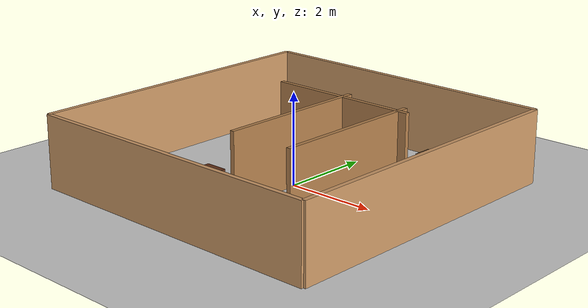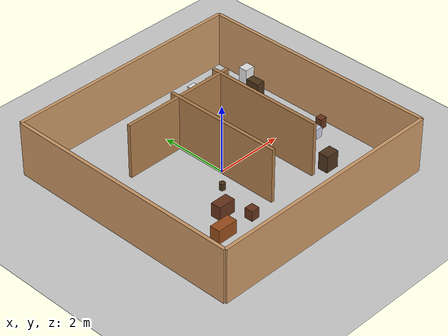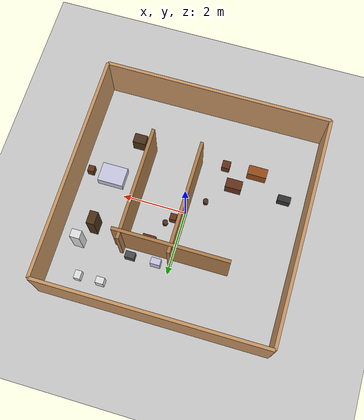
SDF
<?xml version="1.0" ?>
<sdf version="1.10">
    <world name="indoor_house_world">
        <physics name="1ms" type="ignored">
            <max_step_size>0.001</max_step_size>
            <real_time_factor>1.0</real_time_factor>
        </physics>
        <plugin
            filename="gz-sim-physics-system"
            name="gz::sim::systems::Physics">
        </plugin>
        <plugin
            filename="gz-sim-user-commands-system"
            name="gz::sim::systems::UserCommands">
        </plugin>
        <plugin
            filename="gz-sim-scene-broadcaster-system"
            name="gz::sim::systems::SceneBroadcaster">
        </plugin>
        <plugin
            filename="gz-sim-imu-system"
            name="gz::sim::systems::Imu">
        </plugin>
        <plugin
            filename="gz-sim-sensors-system"
            name="gz::sim::systems::Sensors">
            <render_engine>ogre2</render_engine>
        </plugin>

        <light type="directional" name="sun">
            <cast_shadows>true</cast_shadows>
            <pose>0 0 10 0 0 0</pose>
            <diffuse>0.9 0.9 0.9 1</diffuse>
            <specular>0.3 0.3 0.3 1</specular>
            <attenuation>
                <range>1000</range>
                <constant>0.9</constant>
                <linear>0.01</linear>
                <quadratic>0.001</quadratic>
            </attenuation>
            <direction>0 0 -1</direction>
        </light>

        <model name="ground_plane">
            <static>true</static>
            <link name="link">
                <collision name="collision">
                <geometry>
                    <plane>
                    <normal>0 0 1</normal>
                    </plane>
                </geometry>
                </collision>
                <visual name="visual">
                <geometry>
                    <plane>
                    <normal>0 0 1</normal>
                    <size>8 8</size>
                    </plane>
                </geometry>
                <material>
                    <ambient>0.8 0.8 0.8 1</ambient>
                    <diffuse>0.8 0.8 0.8 1</diffuse>
                    <specular>0.8 0.8 0.8 1</specular>
                </material>
                </visual>
            </link>
        </model>

        <!-- Paredes Externas da Casa -->
        <!-- Parede Norte -->
        <model name="wall_north">
            <static>true</static>
            <pose>0 3.5 0.8 0 0 0</pose>
            <link name="link">
                <collision name="collision">
                    <geometry>
                        <box>
                            <size>7 0.1 1.6</size>
                        </box>
                    </geometry>
                </collision>
                <visual name="visual">
                    <geometry>
                        <box>
                            <size>7 0.1 1.6</size>
                        </box>
                    </geometry>
                    <material>
                        <ambient>0.8 0.6 0.4 1</ambient>
                        <diffuse>0.8 0.6 0.4 1</diffuse>
                        <specular>0.1 0.1 0.1 1</specular>
                    </material>
                </visual>
            </link>
        </model>

        <!-- Parede Sul -->
        <model name="wall_south">
            <static>true</static>
            <pose>0 -3.5 0.8 0 0 0</pose>
            <link name="link">
                <collision name="collision">
                    <geometry>
                        <box>
                            <size>7 0.1 1.6</size>
                        </box>
                    </geometry>
                </collision>
                <visual name="visual">
                    <geometry>
                        <box>
                            <size>7 0.1 1.6</size>
                        </box>
                    </geometry>
                    <material>
                        <ambient>0.8 0.6 0.4 1</ambient>
                        <diffuse>0.8 0.6 0.4 1</diffuse>
                        <specular>0.1 0.1 0.1 1</specular>
                    </material>
                </visual>
            </link>
        </model>

        <!-- Parede Leste -->
        <model name="wall_east">
            <static>true</static>
            <pose>3.5 0 0.8 0 0 0</pose>
            <link name="link">
                <collision name="collision">
                    <geometry>
                        <box>
                            <size>0.1 7 1.6</size>
                        </box>
                    </geometry>
                </collision>
                <visual name="visual">
                    <geometry>
                        <box>
                            <size>0.1 7 1.6</size>
                        </box>
                    </geometry>
                    <material>
                        <ambient>0.8 0.6 0.4 1</ambient>
                        <diffuse>0.8 0.6 0.4 1</diffuse>
                        <specular>0.1 0.1 0.1 1</specular>
                    </material>
                </visual>
            </link>
        </model>

        <!-- Parede Oeste -->
        <model name="wall_west">
            <static>true</static>
            <pose>-3.5 0 0.8 0 0 0</pose>
            <link name="link">
                <collision name="collision">
                    <geometry>
                        <box>
                            <size>0.1 7 1.6</size>
                        </box>
                    </geometry>
                </collision>
                <visual name="visual">
                    <geometry>
                        <box>
                            <size>0.1 7 1.6</size>
                        </box>
                    </geometry>
                    <material>
                        <ambient>0.8 0.6 0.4 1</ambient>
                        <diffuse>0.8 0.6 0.4 1</diffuse>
                        <specular>0.1 0.1 0.1 1</specular>
                    </material>
                </visual>
            </link>
        </model>

        <!-- Paredes Internas para Divisão de Cômodos -->
        <!-- Parede Divisória 1 (Sala/Cozinha) -->
        <model name="wall_divider_1">
            <static>true</static>
            <pose>0 0 0.8 0 0 0</pose>
            <link name="link">
                <collision name="collision">
                    <geometry>
                        <box>
                            <size>0.1 3.5 1.6</size>
                        </box>
                    </geometry>
                </collision>
                <visual name="visual">
                    <geometry>
                        <box>
                            <size>0.1 3.5 1.6</size>
                        </box>
                    </geometry>
                    <material>
                        <ambient>0.7 0.5 0.3 1</ambient>
                        <diffuse>0.7 0.5 0.3 1</diffuse>
                        <specular>0.1 0.1 0.1 1</specular>
                    </material>
                </visual>
            </link>
        </model>

        <!-- Parede Divisória 2 (Cozinha/Quarto) -->
        <model name="wall_divider_2">
            <static>true</static>
            <pose>1.5 0 0.8 0 0 0</pose>
            <link name="link">
                <collision name="collision">
                    <geometry>
                        <box>
                            <size>0.1 3.5 1.6</size>
                        </box>
                    </geometry>
                </collision>
                <visual name="visual">
                    <geometry>
                        <box>
                            <size>0.1 3.5 1.6</size>
                        </box>
                    </geometry>
                    <material>
                        <ambient>0.7 0.5 0.3 1</ambient>
                        <diffuse>0.7 0.5 0.3 1</diffuse>
                        <specular>0.1 0.1 0.1 1</specular>
                    </material>
                </visual>
            </link>
        </model>

        <!-- Parede Divisória 3 (Quarto/Banheiro) -->
        <model name="wall_divider_3">
            <static>true</static>
            <pose>0 1.5 0.8 0 0 0</pose>
            <link name="link">
                <collision name="collision">
                    <geometry>
                        <box>
                            <size>3.5 0.1 1.6</size>
                        </box>
                    </geometry>
                </collision>
                <visual name="visual">
                    <geometry>
                        <box>
                            <size>3.5 0.1 1.6</size>
                        </box>
                    </geometry>
                    <material>
                        <ambient>0.7 0.5 0.3 1</ambient>
                        <diffuse>0.7 0.5 0.3 1</diffuse>
                        <specular>0.1 0.1 0.1 1</specular>
                    </material>
                </visual>
            </link>
        </model>

        <!-- Mobílias Básicas -->
        <!-- Mesa na Sala -->
        <model name="table_living_room">
            <static>true</static>
            <pose>-1.2 -1.2 0.2 0 0 0</pose>
            <link name="link">
                <collision name="collision">
                    <geometry>
                        <box>
                            <size>0.5 0.3 0.4</size>
                        </box>
                    </geometry>
                </collision>
                <visual name="visual">
                    <geometry>
                        <box>
                            <size>0.5 0.3 0.4</size>
                        </box>
                    </geometry>
                    <material>
                        <ambient>0.4 0.2 0.1 1</ambient>
                        <diffuse>0.4 0.2 0.1 1</diffuse>
                        <specular>0.1 0.1 0.1 1</specular>
                    </material>
                </visual>
            </link>
        </model>

        <!-- Mesa na Cozinha -->
        <model name="table_kitchen">
            <static>true</static>
            <pose>0.8 1.2 0.2 0 0 0</pose>
            <link name="link">
                <collision name="collision">
                    <geometry>
                        <box>
                            <size>0.4 0.25 0.4</size>
                        </box>
                    </geometry>
                </collision>
                <visual name="visual">
                    <geometry>
                        <box>
                            <size>0.4 0.25 0.4</size>
                        </box>
                    </geometry>
                    <material>
                        <ambient>0.4 0.2 0.1 1</ambient>
                        <diffuse>0.4 0.2 0.1 1</diffuse>
                        <specular>0.1 0.1 0.1 1</specular>
                    </material>
                </visual>
            </link>
        </model>

        <!-- Cama no Quarto -->
        <model name="bed">
            <static>true</static>
            <pose>2.5 -0.5 0.15 0 0 0</pose>
            <link name="link">
                <collision name="collision">
                    <geometry>
                        <box>
                            <size>0.8 0.6 0.3</size>
                        </box>
                    </geometry>
                </collision>
                <visual name="visual">
                    <geometry>
                        <box>
                            <size>0.8 0.6 0.3</size>
                        </box>
                    </geometry>
                    <material>
                        <ambient>0.8 0.8 0.9 1</ambient>
                        <diffuse>0.8 0.8 0.9 1</diffuse>
                        <specular>0.1 0.1 0.1 1</specular>
                    </material>
                </visual>
            </link>
        </model>

        <!-- Armário no Quarto -->
        <model name="wardrobe">
            <static>true</static>
            <pose>2.5 1.2 0.5 0 0 0</pose>
            <link name="link">
                <collision name="collision">
                    <geometry>
                        <box>
                            <size>0.25 0.4 1.0</size>
                        </box>
                    </geometry>
                </collision>
                <visual name="visual">
                    <geometry>
                        <box>
                            <size>0.25 0.4 1.0</size>
                        </box>
                    </geometry>
                    <material>
                        <ambient>0.3 0.2 0.1 1</ambient>
                        <diffuse>0.3 0.2 0.1 1</diffuse>
                        <specular>0.1 0.1 0.1 1</specular>
                    </material>
                </visual>
            </link>
        </model>

        <!-- Mobílias Adicionais na Sala de Estar -->
        <!-- Sofá -->
        <model name="sofa">
            <static>true</static>
            <pose>-1.8 -1.8 0.2 0 0 0</pose>
            <link name="link">
                <collision name="collision">
                    <geometry>
                        <box>
                            <size>0.6 0.3 0.4</size>
                        </box>
                    </geometry>
                </collision>
                <visual name="visual">
                    <geometry>
                        <box>
                            <size>0.6 0.3 0.4</size>
                        </box>
                    </geometry>
                    <material>
                        <ambient>0.6 0.3 0.1 1</ambient>
                        <diffuse>0.6 0.3 0.1 1</diffuse>
                        <specular>0.1 0.1 0.1 1</specular>
                    </material>
                </visual>
            </link>
        </model>

        <!-- Cadeira -->
        <model name="chair">
            <static>true</static>
            <pose>-0.8 -1.8 0.15 0 0 0</pose>
            <link name="link">
                <collision name="collision">
                    <geometry>
                        <box>
                            <size>0.25 0.25 0.3</size>
                        </box>
                    </geometry>
                </collision>
                <visual name="visual">
                    <geometry>
                        <box>
                            <size>0.25 0.25 0.3</size>
                        </box>
                    </geometry>
                    <material>
                        <ambient>0.4 0.2 0.1 1</ambient>
                        <diffuse>0.4 0.2 0.1 1</diffuse>
                        <specular>0.1 0.1 0.1 1</specular>
                    </material>
                </visual>
            </link>
        </model>

        <!-- TV Stand -->
        <model name="tv_stand">
            <static>true</static>
            <pose>-2.8 -1.2 0.15 0 0 0</pose>
            <link name="link">
                <collision name="collision">
                    <geometry>
                        <box>
                            <size>0.4 0.2 0.3</size>
                        </box>
                    </geometry>
                </collision>
                <visual name="visual">
                    <geometry>
                        <box>
                            <size>0.4 0.2 0.3</size>
                        </box>
                    </geometry>
                    <material>
                        <ambient>0.2 0.2 0.2 1</ambient>
                        <diffuse>0.2 0.2 0.2 1</diffuse>
                        <specular>0.1 0.1 0.1 1</specular>
                    </material>
                </visual>
            </link>
        </model>

        <!-- Mobílias Adicionais na Cozinha -->
        <!-- Geladeira -->
        <model name="refrigerator">
            <static>true</static>
            <pose>2.8 1.8 0.5 0 0 0</pose>
            <link name="link">
                <collision name="collision">
                    <geometry>
                        <box>
                            <size>0.3 0.25 1.0</size>
                        </box>
                    </geometry>
                </collision>
                <visual name="visual">
                    <geometry>
                        <box>
                            <size>0.3 0.25 1.0</size>
                        </box>
                    </geometry>
                    <material>
                        <ambient>0.9 0.9 0.9 1</ambient>
                        <diffuse>0.9 0.9 0.9 1</diffuse>
                        <specular>0.3 0.3 0.3 1</specular>
                    </material>
                </visual>
            </link>
        </model>

        <!-- Fogão -->
        <model name="stove">
            <static>true</static>
            <pose>1.2 1.8 0.15 0 0 0</pose>
            <link name="link">
                <collision name="collision">
                    <geometry>
                        <box>
                            <size>0.3 0.2 0.3</size>
                        </box>
                    </geometry>
                </collision>
                <visual name="visual">
                    <geometry>
                        <box>
                            <size>0.3 0.2 0.3</size>
                        </box>
                    </geometry>
                    <material>
                        <ambient>0.3 0.3 0.3 1</ambient>
                        <diffuse>0.3 0.3 0.3 1</diffuse>
                        <specular>0.5 0.5 0.5 1</specular>
                    </material>
                </visual>
            </link>
        </model>

        <!-- Pia -->
        <model name="sink">
            <static>true</static>
            <pose>0.4 1.8 0.2 0 0 0</pose>
            <link name="link">
                <collision name="collision">
                    <geometry>
                        <box>
                            <size>0.3 0.2 0.4</size>
                        </box>
                    </geometry>
                </collision>
                <visual name="visual">
                    <geometry>
                        <box>
                            <size>0.3 0.2 0.4</size>
                        </box>
                    </geometry>
                    <material>
                        <ambient>0.8 0.8 0.9 1</ambient>
                        <diffuse>0.8 0.8 0.9 1</diffuse>
                        <specular>0.8 0.8 0.8 1</specular>
                    </material>
                </visual>
            </link>
        </model>

        <!-- Mobílias Adicionais no Quarto -->
        <!-- Cômoda -->
        <model name="dresser">
            <static>true</static>
            <pose>2.0 -1.8 0.25 0 0 0</pose>
            <link name="link">
                <collision name="collision">
                    <geometry>
                        <box>
                            <size>0.4 0.3 0.5</size>
                        </box>
                    </geometry>
                </collision>
                <visual name="visual">
                    <geometry>
                        <box>
                            <size>0.4 0.3 0.5</size>
                        </box>
                    </geometry>
                    <material>
                        <ambient>0.3 0.2 0.1 1</ambient>
                        <diffuse>0.3 0.2 0.1 1</diffuse>
                        <specular>0.1 0.1 0.1 1</specular>
                    </material>
                </visual>
            </link>
        </model>

        <!-- Mesa de Cabeceira -->
        <model name="nightstand">
            <static>true</static>
            <pose>3.2 -0.5 0.15 0 0 0</pose>
            <link name="link">
                <collision name="collision">
                    <geometry>
                        <box>
                            <size>0.2 0.2 0.3</size>
                        </box>
                    </geometry>
                </collision>
                <visual name="visual">
                    <geometry>
                        <box>
                            <size>0.2 0.2 0.3</size>
                        </box>
                    </geometry>
                    <material>
                        <ambient>0.4 0.2 0.1 1</ambient>
                        <diffuse>0.4 0.2 0.1 1</diffuse>
                        <specular>0.1 0.1 0.1 1</specular>
                    </material>
                </visual>
            </link>
        </model>

        <!-- Mobílias no Banheiro -->
        <!-- Pia do Banheiro -->
        <model name="bathroom_sink">
            <static>true</static>
            <pose>1.8 2.8 0.2 0 0 0</pose>
            <link name="link">
                <collision name="collision">
                    <geometry>
                        <box>
                            <size>0.25 0.2 0.4</size>
                        </box>
                    </geometry>
                </collision>
                <visual name="visual">
                    <geometry>
                        <box>
                            <size>0.25 0.2 0.4</size>
                        </box>
                    </geometry>
                    <material>
                        <ambient>0.9 0.9 0.9 1</ambient>
                        <diffuse>0.9 0.9 0.9 1</diffuse>
                        <specular>0.8 0.8 0.8 1</specular>
                    </material>
                </visual>
            </link>
        </model>

        <!-- Vaso Sanitário -->
        <model name="toilet">
            <static>true</static>
            <pose>2.5 2.8 0.15 0 0 0</pose>
            <link name="link">
                <collision name="collision">
                    <geometry>
                        <box>
                            <size>0.2 0.25 0.3</size>
                        </box>
                    </geometry>
                </collision>
                <visual name="visual">
                    <geometry>
                        <box>
                            <size>0.2 0.25 0.3</size>
                        </box>
                    </geometry>
                    <material>
                        <ambient>0.9 0.9 0.9 1</ambient>
                        <diffuse>0.9 0.9 0.9 1</diffuse>
                        <specular>0.8 0.8 0.8 1</specular>
                    </material>
                </visual>
            </link>
        </model>

        <!-- Obstáculos no Corredor -->
        <!-- Vaso de Planta -->
        <model name="plant_pot">
            <static>true</static>
            <pose>0.5 0.5 0.1 0 0 0</pose>
            <link name="link">
                <collision name="collision">
                    <geometry>
                        <cylinder>
                            <radius>0.08</radius>
                            <length>0.2</length>
                        </cylinder>
                    </geometry>
                </collision>
                <visual name="visual">
                    <geometry>
                        <cylinder>
                            <radius>0.08</radius>
                            <length>0.2</length>
                        </cylinder>
                    </geometry>
                    <material>
                        <ambient>0.3 0.2 0.1 1</ambient>
                        <diffuse>0.3 0.2 0.1 1</diffuse>
                        <specular>0.1 0.1 0.1 1</specular>
                    </material>
                </visual>
            </link>
        </model>

        <!-- Outro Vaso de Planta -->
        <model name="plant_pot_2">
            <static>true</static>
            <pose>-0.5 -0.5 0.1 0 0 0</pose>
            <link name="link">
                <collision name="collision">
                    <geometry>
                        <cylinder>
                            <radius>0.08</radius>
                            <length>0.2</length>
                        </cylinder>
                    </geometry>
                </collision>
                <visual name="visual">
                    <geometry>
                        <cylinder>
                            <radius>0.08</radius>
                            <length>0.2</length>
                        </cylinder>
                    </geometry>
                    <material>
                        <ambient>0.3 0.2 0.1 1</ambient>
                        <diffuse>0.3 0.2 0.1 1</diffuse>
                        <specular>0.1 0.1 0.1 1</specular>
                    </material>
                </visual>
            </link>
        </model>

        <!-- Mesa Pequena no Corredor -->
        <model name="small_table">
            <static>true</static>
            <pose>0.3 0.3 0.15 0 0 0</pose>
            <link name="link">
                <collision name="collision">
                    <geometry>
                        <box>
                            <size>0.2 0.2 0.3</size>
                        </box>
                    </geometry>
                </collision>
                <visual name="visual">
                    <geometry>
                        <box>
                            <size>0.2 0.2 0.3</size>
                        </box>
                    </geometry>
                    <material>
                        <ambient>0.4 0.2 0.1 1</ambient>
                        <diffuse>0.4 0.2 0.1 1</diffuse>
                        <specular>0.1 0.1 0.1 1</specular>
                    </material>
                </visual>
            </link>
        </model>
    </world>
</sdf>
